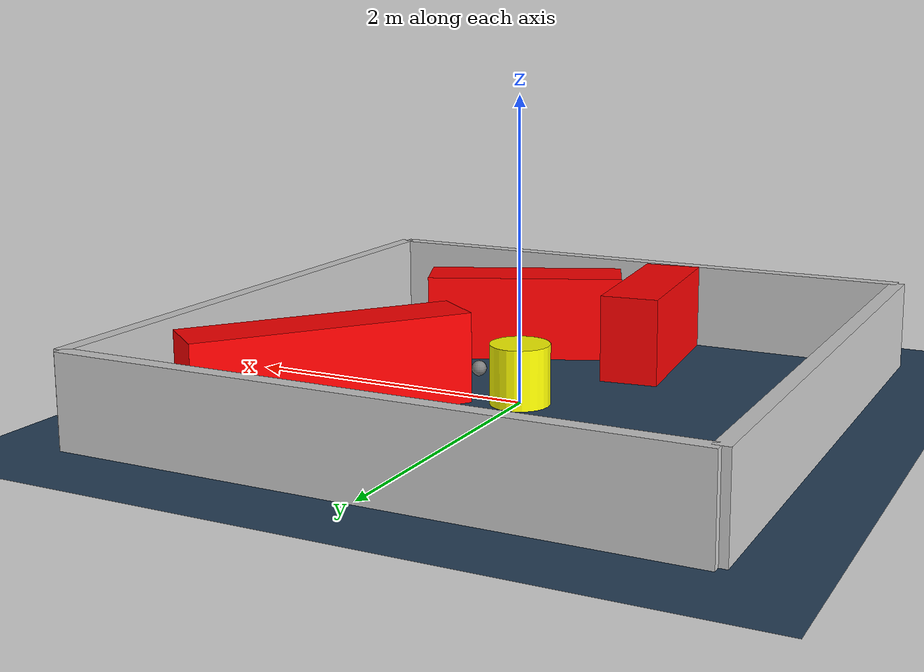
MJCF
<?xml version="1.0" ?>
<mujoco model="generated_environment">
  <option timestep="0.01" integrator="RK4" cone="elliptic"/>
  <default>
    <geom density="1"/>
  </default>
  <asset>
    <texture builtin="gradient" height="3072" rgb1="0.3 0.5 0.7" rgb2="0 0 0" type="skybox" width="512"/>
    <texture builtin="checker" height="300" mark="edge" markrgb="0.8 0.8 0.8" name="groundplane" rgb1="0.2 0.3 0.4" rgb2="0.1 0.2 0.3" type="2d" width="300"/>
    <material name="groundplane" reflectance="0.2" texrepeat="5 5" texture="groundplane" texuniform="true"/>
    <material name="robot" rgba="0.0 1.0 0.0 1"/>
  </asset>
  <worldbody>
    <light dir="0 0 -1" directional="true" pos="0 0 1.5"/>
    <geom condim="4" friction="1.0 0.005 0.001" material="groundplane" name="floor" size="0 0 0.05" type="plane"/>
    <body name="walls">
      <geom name="wall_1" condim="4" pos="-2.0 0.0 0.3" rgba="0.800000011920929 0.800000011920929 0.800000011920929 1.0" size="0.05 2.0 0.3" type="box"/>
      <geom name="wall_2" condim="4" pos="2.0 0.0 0.3" rgba="0.800000011920929 0.800000011920929 0.800000011920929 1.0" size="0.05 2.0 0.3" type="box"/>
      <geom name="wall_3" condim="4" pos="0.0 -2.0 0.3" rgba="0.800000011920929 0.800000011920929 0.800000011920929 1.0" size="2.0 0.05 0.3" type="box"/>
      <geom name="wall_4" condim="4" pos="0.0 2.0 0.3" rgba="0.800000011920929 0.800000011920929 0.800000011920929 1.0" size="2.0 0.05 0.3" type="box"/>
    </body>
    <body name="robot">
      <joint name="joint_x" type="slide" pos="0 0 0" axis="1 0 0"/>
      <joint name="joint_y" type="slide" pos="0 0 0" axis="0 1 0"/>
      <geom name="robot" type="sphere" pos="0.3 0.0 0.2" size="0.05" mass="5." friction="1.0 0.005 0.0001" condim="4" rgba="0.5 0.5 0.5 1.0"/>
      <site name="sensor_ball"/>
    </body>
    <body name="obstacle_movable_1">
      <geom name="obstacle_movable_1" condim="4" pos="0.0 0.0 0.2" euler="0 0 0.0" friction="1.0 0.005 0.001" rgba="1.0 1.0 0.0 1.0" size="0.2 0.2 0.0" type="cylinder" mass="0.1"/>
      <joint type="free"/>
    </body>
    <body name="obstacle_2_static">
      <geom name="obstacle_2_static" condim="4" pos="0.5283758480941547 -1.1873615290962358 0.3" euler="0 0 23.12141931192653" friction="1.0 0.005 0.001" rgba="1 0 0 1" size="0.6981761388796055 0.2 0.3" type="box"/>
    </body>
    <body name="obstacle_3_static">
      <geom name="obstacle_3_static" condim="4" pos="-0.40515483365779614 -1.329320205950561 0.3" euler="0 0 275.6723429800116" friction="1.0 0.005 0.001" rgba="1 0 0 1" size="0.6027051196774038 0.2 0.3" type="box"/>
    </body>
    <body name="obstacle_4_static">
      <geom name="obstacle_4_static" condim="4" pos="1.0115117275266219 0.7208382262542397 0.3" euler="0 0 232.16173270285745" friction="1.0 0.005 0.001" rgba="1 0 0 1" size="0.9155005311816893 0.2 0.3" type="box"/>
    </body>
  </worldbody>
  <actuator>
    <motor name="actuator_x" joint="joint_x" gear="1" ctrlrange="-1 1"/>
    <motor name="actuator_y" joint="joint_y" gear="1" ctrlrange="-1 1"/>
  </actuator>
</mujoco>
